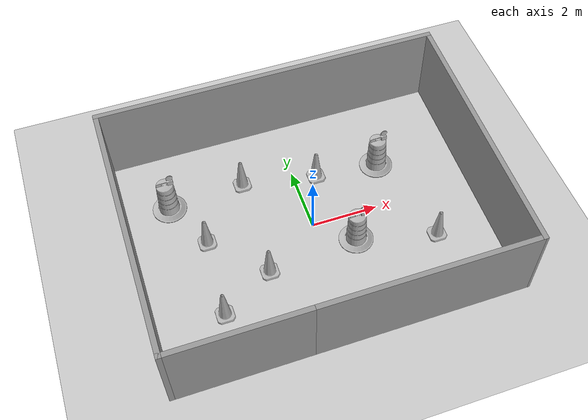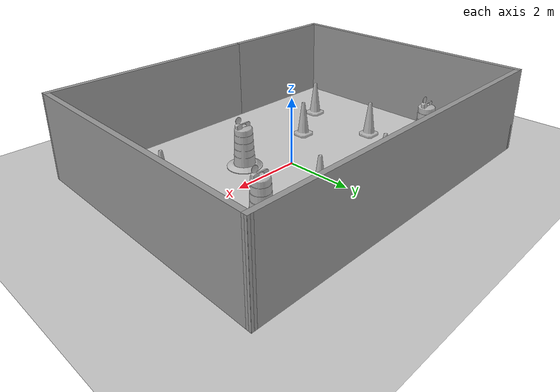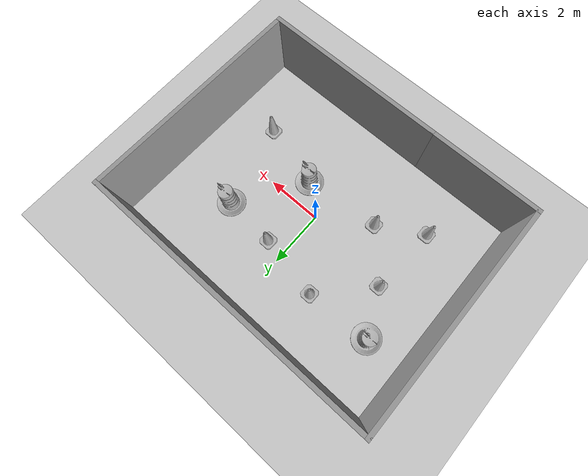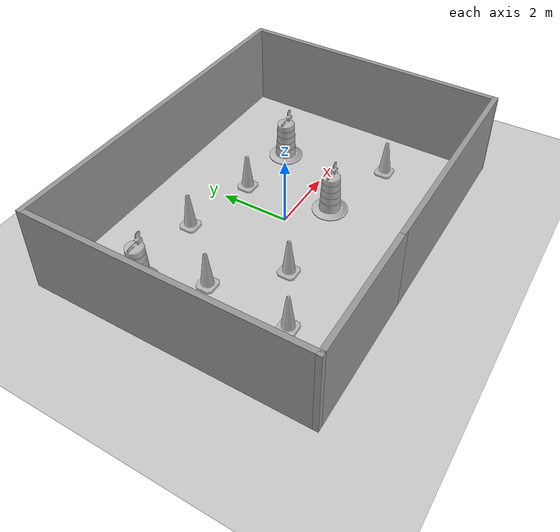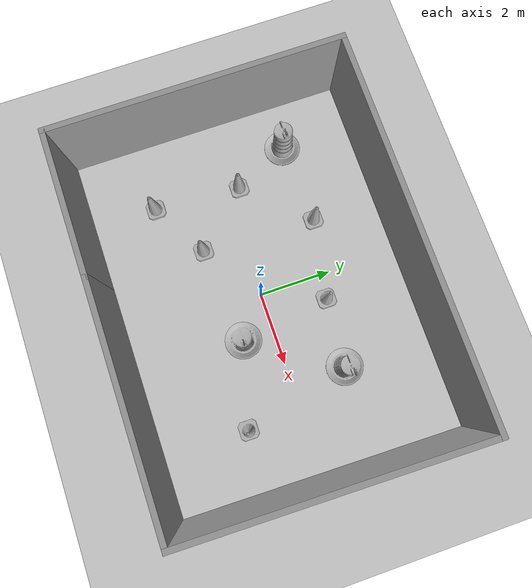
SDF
<sdf version="1.7">
 <world name="default">
  <light name="sun" type="directional">
   <pose>0 0 10 0 -0 0</pose>
   <diffuse>0.8 0.8 0.8 1</diffuse>
   <specular>0.2 0.2 0.2 1</specular>
   <attenuation>
    <range>1000</range>
    <constant>0.9</constant>
    <linear>0.01</linear>
    <quadratic>0.001</quadratic>
   </attenuation>
   <direction>-0.5 0.1 -0.9</direction>
   <spot><inner_angle>0</inner_angle><outer_angle>0</outer_angle><falloff>0</falloff></spot>
  </light>
  <model name="ground_plane">
   <static>1</static>
   <link name="link">
    <collision name="collision">
     <geometry><plane><normal>0 0 1</normal><size>100 100</size></plane></geometry>
     <surface><friction><ode><mu>100</mu><mu2>50</mu2></ode></friction></surface>
    </collision>
    <visual name="visual">
     <cast_shadows>0</cast_shadows>
     <geometry><plane><normal>0 0 1</normal><size>100 100</size></plane></geometry>
     <material>
      <script><uri>file://media/materials/scripts/gazebo.material</uri><name>Gazebo/Grey</name></script>
     </material>
    </visual>
   </link>
  </model>
  <gravity>0 0 -9.8</gravity>
  <magnetic_field>6e-06 2.3e-05 -4.2e-05</magnetic_field>
  <atmosphere type="adiabatic"/>
  <physics type="ode">
   <max_step_size>0.001</max_step_size>
   <real_time_factor>1</real_time_factor>
   <real_time_update_rate>1000</real_time_update_rate>
  </physics>
  <scene><ambient>0.4 0.4 0.4 1</ambient><background>0.7 0.7 0.7 1</background><shadows>1</shadows></scene>
  <audio><device>default</device></audio>
  <spherical_coordinates>
   <surface_model>EARTH_WGS84</surface_model>
   <latitude_deg>0</latitude_deg>
   <longitude_deg>0</longitude_deg>
   <elevation>0</elevation>
   <heading_deg>0</heading_deg>
  </spherical_coordinates>
  <model name="building2">
   <pose>-0.032361 0.046911 0 0 -0 0</pose>
   <link name="Wall_12">
    <collision name="Wall_12_Collision">
     <geometry><box><size>6.5 0.15 2.5</size></box></geometry>
     <pose>0 0 1.25 0 -0 0</pose>
    </collision>
    <visual name="Wall_12_Visual">
     <pose>0 0 1.25 0 -0 0</pose>
     <geometry><box><size>6.5 0.15 2.5</size></box></geometry>
     <material>
      <script><uri>file://media/materials/scripts/gazebo.material</uri><name>Gazebo/Grey</name></script>
      <ambient>1 1 1 1</ambient>
     </material>
     <meta><layer>0</layer></meta>
    </visual>
    <pose>1.84929 -3.925 0 0 -0 3.14159</pose>
   </link>
   <link name="Wall_14">
    <collision name="Wall_14_Collision">
     <geometry><box><size>4 0.15 2.5</size></box></geometry>
     <pose>0 0 1.25 0 -0 0</pose>
    </collision>
    <visual name="Wall_14_Visual">
     <pose>0 0 1.25 0 -0 0</pose>
     <geometry><box><size>4 0.15 2.5</size></box></geometry>
     <material>
      <script><uri>file://media/materials/scripts/gazebo.material</uri><name>Gazebo/Grey</name></script>
      <ambient>1 1 1 1</ambient>
     </material>
     <meta><layer>0</layer></meta>
    </visual>
    <pose>-3.25071 -3.925 0 0 -0 3.14159</pose>
   </link>
   <link name="Wall_15">
    <collision name="Wall_15_Collision">
     <geometry><box><size>8 0.15 2.5</size></box></geometry>
     <pose>0 0 1.25 0 -0 0</pose>
    </collision>
    <visual name="Wall_15_Visual">
     <pose>0 0 1.25 0 -0 0</pose>
     <geometry><box><size>8 0.15 2.5</size></box></geometry>
     <material>
      <script><uri>file://media/materials/scripts/gazebo.material</uri><name>Gazebo/Grey</name></script>
      <ambient>1 1 1 1</ambient>
     </material>
     <meta><layer>0</layer></meta>
    </visual>
    <pose>-5.17571 -0 0 0 -0 1.5708</pose>
   </link>
   <link name="Wall_16">
    <collision name="Wall_16_Collision">
     <geometry><box><size>10.5 0.15 2.5</size></box></geometry>
     <pose>0 0 1.25 0 -0 0</pose>
    </collision>
    <visual name="Wall_16_Visual">
     <pose>0 0 1.25 0 -0 0</pose>
     <geometry><box><size>10.5 0.15 2.5</size></box></geometry>
     <material>
      <script><uri>file://media/materials/scripts/gazebo.material</uri><name>Gazebo/Grey</name></script>
      <ambient>1 1 1 1</ambient>
     </material>
     <meta><layer>0</layer></meta>
    </visual>
    <pose>-0.00071 3.925 0 0 -0 0</pose>
   </link>
   <link name="Wall_17">
    <collision name="Wall_17_Collision">
     <geometry><box><size>8.00143 0.15 2.5</size></box></geometry>
     <pose>0 0 1.25 0 -0 0</pose>
    </collision>
    <visual name="Wall_17_Visual">
     <pose>0 0 1.25 0 -0 0</pose>
     <geometry><box><size>8.00143 0.15 2.5</size></box></geometry>
     <material>
      <script><uri>file://media/materials/scripts/gazebo.material</uri><name>Gazebo/Grey</name></script>
      <ambient>1 1 1 1</ambient>
     </material>
     <meta><layer>0</layer></meta>
    </visual>
    <pose>5.09929 -0 0 0 -0 -1.5899</pose>
   </link>
   <static>1</static>
  </model>
  <model name="Construction Cone">
   <link name="link">
    <collision name="collision">
     <geometry>
      <mesh><scale>10 10 10</scale><uri>model://construction_cone/meshes/construction_cone.dae</uri></mesh>
     </geometry>
    </collision>
    <visual name="visual">
     <geometry>
      <mesh><scale>10 10 10</scale><uri>model://construction_cone/meshes/construction_cone.dae</uri></mesh>
     </geometry>
    </visual>
    <inertial>
     <inertia><ixx>1</ixx><ixy>0</ixy><ixz>0</ixz><iyy>1</iyy><iyz>0</iyz><izz>1</izz></inertia>
     <mass>1</mass>
    </inertial>
   </link>
   <pose>0.679574 1.66495 -0 0 -0 0</pose>
  </model>
  <model name="Construction Barrel">
   <link name="link">
    <inertial>
     <pose>0 0 0.4 0 -0 0</pose>
     <mass>500</mass>
     <inertia><ixx>51.2096</ixx><iyy>51.2096</iyy><izz>25</izz><ixy>0</ixy><ixz>0</ixz><iyz>0</iyz></inertia>
    </inertial>
    <collision name="collision">
     <geometry><mesh><uri>model://construction_barrel/meshes/construction_barrel.dae</uri></mesh></geometry>
    </collision>
    <visual name="visual">
     <geometry><mesh><uri>model://construction_barrel/meshes/construction_barrel.dae</uri></mesh></geometry>
    </visual>
   </link>
   <pose>1.03548 -0.859188 0 0 0 -1.5e-05</pose>
  </model>
  <model name="Construction Barrel_0">
   <link name="link">
    <inertial>
     <pose>0 0 0.4 0 -0 0</pose>
     <mass>500</mass>
     <inertia><ixx>51.2096</ixx><iyy>51.2096</iyy><izz>25</izz><ixy>0</ixy><ixz>0</ixz><iyz>0</iyz></inertia>
    </inertial>
    <collision name="collision">
     <geometry><mesh><uri>model://construction_barrel/meshes/construction_barrel.dae</uri></mesh></geometry>
    </collision>
    <visual name="visual">
     <geometry><mesh><uri>model://construction_barrel/meshes/construction_barrel.dae</uri></mesh></geometry>
    </visual>
   </link>
   <pose>-3.85096 1.95617 -0 1e-06 -1e-06 -1.2e-05</pose>
  </model>
  <model name="Construction Cone_0">
   <link name="link">
    <collision name="collision">
     <geometry>
      <mesh><scale>10 10 10</scale><uri>model://construction_cone/meshes/construction_cone.dae</uri></mesh>
     </geometry>
    </collision>
    <visual name="visual">
     <geometry>
      <mesh><scale>10 10 10</scale><uri>model://construction_cone/meshes/construction_cone.dae</uri></mesh>
     </geometry>
    </visual>
    <inertial>
     <inertia><ixx>1</ixx><ixy>0</ixy><ixz>0</ixz><iyy>1</iyy><iyz>0</iyz><izz>1</izz></inertia>
     <mass>1</mass>
    </inertial>
   </link>
   <pose>-1.68275 -1.11806 -1e-05 -0 -0 -0</pose>
  </model>
  <model name="Construction Barrel_1">
   <link name="link">
    <inertial>
     <pose>0 0 0.4 0 -0 0</pose>
     <mass>500</mass>
     <inertia><ixx>51.2096</ixx><iyy>51.2096</iyy><izz>25</izz><ixy>0</ixy><ixz>0</ixz><iyz>0</iyz></inertia>
    </inertial>
    <collision name="collision">
     <geometry><mesh><uri>model://construction_barrel/meshes/construction_barrel.dae</uri></mesh></geometry>
    </collision>
    <visual name="visual">
     <geometry><mesh><uri>model://construction_barrel/meshes/construction_barrel.dae</uri></mesh></geometry>
    </visual>
   </link>
   <pose>2.58882 1.50314 -2e-06 -0 7e-06 -8e-06</pose>
  </model>
  <model name="Construction Cone_1">
   <link name="link">
    <collision name="collision">
     <geometry>
      <mesh><scale>10 10 10</scale><uri>model://construction_cone/meshes/construction_cone.dae</uri></mesh>
     </geometry>
    </collision>
    <visual name="visual">
     <geometry>
      <mesh><scale>10 10 10</scale><uri>model://construction_cone/meshes/construction_cone.dae</uri></mesh>
     </geometry>
    </visual>
    <inertial>
     <inertia><ixx>1</ixx><ixy>0</ixy><ixz>0</ixz><iyy>1</iyy><iyz>0</iyz><izz>1</izz></inertia>
     <mass>1</mass>
    </inertial>
   </link>
   <pose>-3.10662 0.402875 -0 0 -0 0</pose>
  </model>
  <model name="Construction Cone_2">
   <link name="link">
    <collision name="collision">
     <geometry>
      <mesh><scale>10 10 10</scale><uri>model://construction_cone/meshes/construction_cone.dae</uri></mesh>
     </geometry>
    </collision>
    <visual name="visual">
     <geometry>
      <mesh><scale>10 10 10</scale><uri>model://construction_cone/meshes/construction_cone.dae</uri></mesh>
     </geometry>
    </visual>
    <inertial>
     <inertia><ixx>1</ixx><ixy>0</ixy><ixz>0</ixz><iyy>1</iyy><iyz>0</iyz><izz>1</izz></inertia>
     <mass>1</mass>
    </inertial>
   </link>
   <pose>-1.55331 2.08563 -3e-06 -3e-06 -1e-06 -0</pose>
  </model>
  <model name="Construction Cone_3">
   <link name="link">
    <collision name="collision">
     <geometry>
      <mesh><scale>10 10 10</scale><uri>model://construction_cone/meshes/construction_cone.dae</uri></mesh>
     </geometry>
    </collision>
    <visual name="visual">
     <geometry>
      <mesh><scale>10 10 10</scale><uri>model://construction_cone/meshes/construction_cone.dae</uri></mesh>
     </geometry>
    </visual>
    <inertial>
     <inertia><ixx>1</ixx><ixy>0</ixy><ixz>0</ixz><iyy>1</iyy><iyz>0</iyz><izz>1</izz></inertia>
     <mass>1</mass>
    </inertial>
   </link>
   <pose>-3.25186 -2.02478 -0 0 -0 0</pose>
  </model>
  <model name="Construction Cone_4">
   <link name="link">
    <collision name="collision">
     <geometry>
      <mesh><scale>10 10 10</scale><uri>model://construction_cone/meshes/construction_cone.dae</uri></mesh>
     </geometry>
    </collision>
    <visual name="visual">
     <geometry>
      <mesh><scale>10 10 10</scale><uri>model://construction_cone/meshes/construction_cone.dae</uri></mesh>
     </geometry>
    </visual>
    <inertial>
     <inertia><ixx>1</ixx><ixy>0</ixy><ixz>0</ixz><iyy>1</iyy><iyz>0</iyz><izz>1</izz></inertia>
     <mass>1</mass>
    </inertial>
   </link>
   <pose>3.32922 -1.48239 -0 0 -1e-06 0</pose>
  </model>
 </world>
</sdf>
